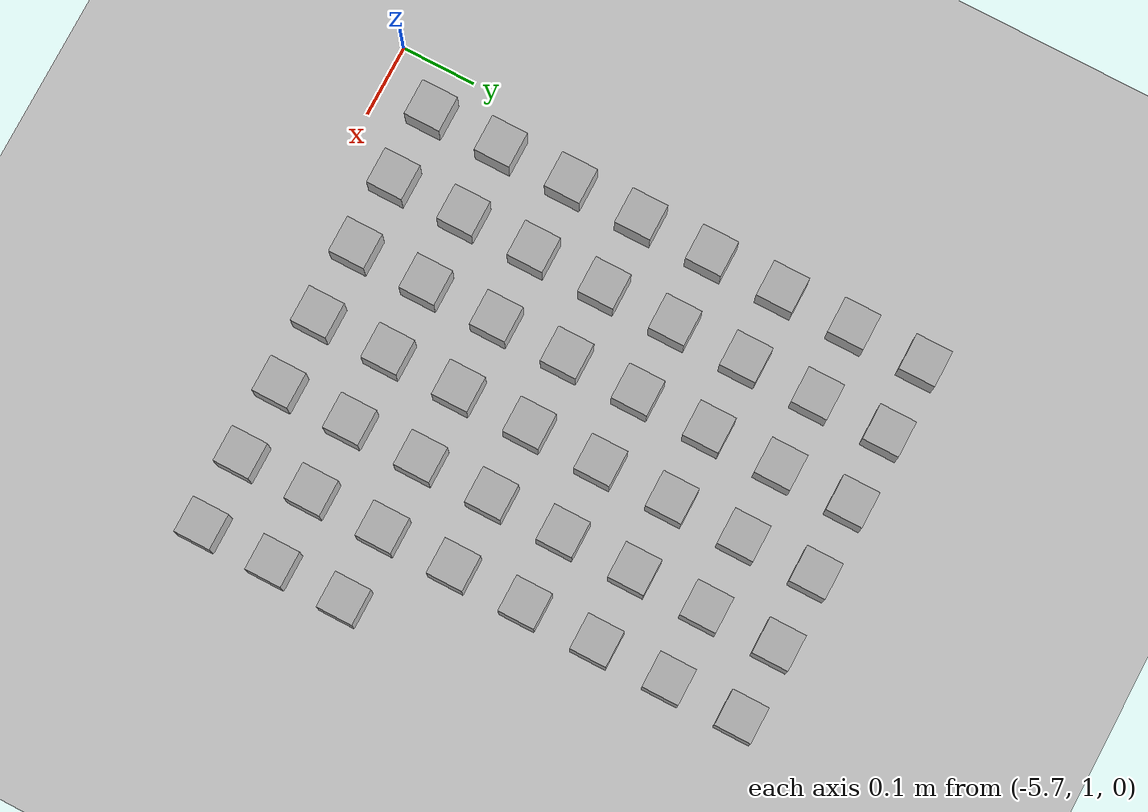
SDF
<sdf version="1.4">
 <world name="default">
  <model name="ground_plane">
   <static>1</static>
   <link name="link">
    <collision name="collision">
     <geometry><plane><normal>0 0 1</normal><size>100 100</size></plane></geometry>
     <surface><friction><ode><mu>100</mu><mu2>50</mu2></ode></friction></surface>
    </collision>
    <visual name="visual">
     <cast_shadows>0</cast_shadows>
     <geometry><plane><normal>0 0 1</normal><size>100 100</size></plane></geometry>
     <material>
      <script><uri>file://media/materials/scripts/gazebo.material</uri><name>Gazebo/Grey</name></script>
     </material>
    </visual>
    <velocity_decay><linear>0</linear><angular>0</angular></velocity_decay>
   </link>
  </model>
  <model name="at128">
   <static>0</static>
   <link name="link">
    <inertial>
     <mass>0.01</mass>
     <inertia><ixx>4e-05</ixx><ixy>0</ixy><ixz>0</ixz><iyy>4e-05</iyy><iyz>0</iyz><izz>4e-05</izz></inertia>
    </inertial>
    <visual name="visual">
     <geometry><box><size>0.05 0.05 0.05</size></box></geometry>
     <material>
      <script>
       <uri>model://at0/materials/scripts</uri>
       <uri>model://at0/materials/textures</uri>
       <name>at0/Diffuse</name>
      </script>
     </material>
    </visual>
    <collision name="collision">
     <geometry><box><size>0.05 0.05 0.05</size></box></geometry>
     <surface><friction><ode><mu>0.8</mu><mu2>0.7</mu2></ode></friction></surface>
    </collision>
    <velocity_decay><linear>0</linear><angular>0</angular></velocity_decay>
   </link>
   <pose>-5.63888 1.07373 0.025 0 -0 0</pose>
  </model>
  <model name="at129">
   <static>0</static>
   <link name="link">
    <inertial>
     <mass>0.01</mass>
     <inertia><ixx>4e-05</ixx><ixy>0</ixy><ixz>0</ixz><iyy>4e-05</iyy><iyz>0</iyz><izz>4e-05</izz></inertia>
    </inertial>
    <visual name="visual">
     <geometry><box><size>0.05 0.05 0.05</size></box></geometry>
     <material>
      <script>
       <uri>model://at0/materials/scripts</uri>
       <uri>model://at0/materials/textures</uri>
       <name>at0/Diffuse</name>
      </script>
     </material>
    </visual>
    <collision name="collision">
     <geometry><box><size>0.05 0.05 0.05</size></box></geometry>
     <surface><friction><ode><mu>0.8</mu><mu2>0.7</mu2></ode></friction></surface>
    </collision>
    <velocity_decay><linear>0</linear><angular>0</angular></velocity_decay>
   </link>
   <pose>-5.53888 1.07373 0.025 0 -0 0</pose>
  </model>
  <model name="at130">
   <static>0</static>
   <link name="link">
    <inertial>
     <mass>0.01</mass>
     <inertia><ixx>4e-05</ixx><ixy>0</ixy><ixz>0</ixz><iyy>4e-05</iyy><iyz>0</iyz><izz>4e-05</izz></inertia>
    </inertial>
    <visual name="visual">
     <geometry><box><size>0.05 0.05 0.05</size></box></geometry>
     <material>
      <script>
       <uri>model://at0/materials/scripts</uri>
       <uri>model://at0/materials/textures</uri>
       <name>at0/Diffuse</name>
      </script>
     </material>
    </visual>
    <collision name="collision">
     <geometry><box><size>0.05 0.05 0.05</size></box></geometry>
     <surface><friction><ode><mu>0.8</mu><mu2>0.7</mu2></ode></friction></surface>
    </collision>
    <velocity_decay><linear>0</linear><angular>0</angular></velocity_decay>
   </link>
   <pose>-5.43888 1.07373 0.025 0 -0 0</pose>
  </model>
  <model name="at131">
   <static>0</static>
   <link name="link">
    <inertial>
     <mass>0.01</mass>
     <inertia><ixx>4e-05</ixx><ixy>0</ixy><ixz>0</ixz><iyy>4e-05</iyy><iyz>0</iyz><izz>4e-05</izz></inertia>
    </inertial>
    <visual name="visual">
     <geometry><box><size>0.05 0.05 0.05</size></box></geometry>
     <material>
      <script>
       <uri>model://at0/materials/scripts</uri>
       <uri>model://at0/materials/textures</uri>
       <name>at0/Diffuse</name>
      </script>
     </material>
    </visual>
    <collision name="collision">
     <geometry><box><size>0.05 0.05 0.05</size></box></geometry>
     <surface><friction><ode><mu>0.8</mu><mu2>0.7</mu2></ode></friction></surface>
    </collision>
    <velocity_decay><linear>0</linear><angular>0</angular></velocity_decay>
   </link>
   <pose>-5.33888 1.07373 0.025 0 -0 0</pose>
  </model>
  <model name="at132">
   <static>0</static>
   <link name="link">
    <inertial>
     <mass>0.01</mass>
     <inertia><ixx>4e-05</ixx><ixy>0</ixy><ixz>0</ixz><iyy>4e-05</iyy><iyz>0</iyz><izz>4e-05</izz></inertia>
    </inertial>
    <visual name="visual">
     <geometry><box><size>0.05 0.05 0.05</size></box></geometry>
     <material>
      <script>
       <uri>model://at0/materials/scripts</uri>
       <uri>model://at0/materials/textures</uri>
       <name>at0/Diffuse</name>
      </script>
     </material>
    </visual>
    <collision name="collision">
     <geometry><box><size>0.05 0.05 0.05</size></box></geometry>
     <surface><friction><ode><mu>0.8</mu><mu2>0.7</mu2></ode></friction></surface>
    </collision>
    <velocity_decay><linear>0</linear><angular>0</angular></velocity_decay>
   </link>
   <pose>-5.23888 1.07373 0.025 0 -0 0</pose>
  </model>
  <model name="at133">
   <static>0</static>
   <link name="link">
    <inertial>
     <mass>0.01</mass>
     <inertia><ixx>4e-05</ixx><ixy>0</ixy><ixz>0</ixz><iyy>4e-05</iyy><iyz>0</iyz><izz>4e-05</izz></inertia>
    </inertial>
    <visual name="visual">
     <geometry><box><size>0.05 0.05 0.05</size></box></geometry>
     <material>
      <script>
       <uri>model://at0/materials/scripts</uri>
       <uri>model://at0/materials/textures</uri>
       <name>at0/Diffuse</name>
      </script>
     </material>
    </visual>
    <collision name="collision">
     <geometry><box><size>0.05 0.05 0.05</size></box></geometry>
     <surface><friction><ode><mu>0.8</mu><mu2>0.7</mu2></ode></friction></surface>
    </collision>
    <velocity_decay><linear>0</linear><angular>0</angular></velocity_decay>
   </link>
   <pose>-5.13889 1.07373 0.025 0 -0 0</pose>
  </model>
  <model name="at134">
   <static>0</static>
   <link name="link">
    <inertial>
     <mass>0.01</mass>
     <inertia><ixx>4e-05</ixx><ixy>0</ixy><ixz>0</ixz><iyy>4e-05</iyy><iyz>0</iyz><izz>4e-05</izz></inertia>
    </inertial>
    <visual name="visual">
     <geometry><box><size>0.05 0.05 0.05</size></box></geometry>
     <material>
      <script>
       <uri>model://at0/materials/scripts</uri>
       <uri>model://at0/materials/textures</uri>
       <name>at0/Diffuse</name>
      </script>
     </material>
    </visual>
    <collision name="collision">
     <geometry><box><size>0.05 0.05 0.05</size></box></geometry>
     <surface><friction><ode><mu>0.8</mu><mu2>0.7</mu2></ode></friction></surface>
    </collision>
    <velocity_decay><linear>0</linear><angular>0</angular></velocity_decay>
   </link>
   <pose>-5.03889 1.07373 0.025 0 -0 0</pose>
  </model>
  <model name="at136">
   <static>0</static>
   <link name="link">
    <inertial>
     <mass>0.01</mass>
     <inertia><ixx>4e-05</ixx><ixy>0</ixy><ixz>0</ixz><iyy>4e-05</iyy><iyz>0</iyz><izz>4e-05</izz></inertia>
    </inertial>
    <visual name="visual">
     <geometry><box><size>0.05 0.05 0.05</size></box></geometry>
     <material>
      <script>
       <uri>model://at0/materials/scripts</uri>
       <uri>model://at0/materials/textures</uri>
       <name>at0/Diffuse</name>
      </script>
     </material>
    </visual>
    <collision name="collision">
     <geometry><box><size>0.05 0.05 0.05</size></box></geometry>
     <surface><friction><ode><mu>0.8</mu><mu2>0.7</mu2></ode></friction></surface>
    </collision>
    <velocity_decay><linear>0</linear><angular>0</angular></velocity_decay>
   </link>
   <pose>-5.63888 1.17373 0.025 0 -0 0</pose>
  </model>
  <model name="at137">
   <static>0</static>
   <link name="link">
    <inertial>
     <mass>0.01</mass>
     <inertia><ixx>4e-05</ixx><ixy>0</ixy><ixz>0</ixz><iyy>4e-05</iyy><iyz>0</iyz><izz>4e-05</izz></inertia>
    </inertial>
    <visual name="visual">
     <geometry><box><size>0.05 0.05 0.05</size></box></geometry>
     <material>
      <script>
       <uri>model://at0/materials/scripts</uri>
       <uri>model://at0/materials/textures</uri>
       <name>at0/Diffuse</name>
      </script>
     </material>
    </visual>
    <collision name="collision">
     <geometry><box><size>0.05 0.05 0.05</size></box></geometry>
     <surface><friction><ode><mu>0.8</mu><mu2>0.7</mu2></ode></friction></surface>
    </collision>
    <velocity_decay><linear>0</linear><angular>0</angular></velocity_decay>
   </link>
   <pose>-5.53888 1.17373 0.025 0 -0 0</pose>
  </model>
  <model name="at138">
   <static>0</static>
   <link name="link">
    <inertial>
     <mass>0.01</mass>
     <inertia><ixx>4e-05</ixx><ixy>0</ixy><ixz>0</ixz><iyy>4e-05</iyy><iyz>0</iyz><izz>4e-05</izz></inertia>
    </inertial>
    <visual name="visual">
     <geometry><box><size>0.05 0.05 0.05</size></box></geometry>
     <material>
      <script>
       <uri>model://at0/materials/scripts</uri>
       <uri>model://at0/materials/textures</uri>
       <name>at0/Diffuse</name>
      </script>
     </material>
    </visual>
    <collision name="collision">
     <geometry><box><size>0.05 0.05 0.05</size></box></geometry>
     <surface><friction><ode><mu>0.8</mu><mu2>0.7</mu2></ode></friction></surface>
    </collision>
    <velocity_decay><linear>0</linear><angular>0</angular></velocity_decay>
   </link>
   <pose>-5.43888 1.17373 0.025 0 -0 0</pose>
  </model>
  <model name="at139">
   <static>0</static>
   <link name="link">
    <inertial>
     <mass>0.01</mass>
     <inertia><ixx>4e-05</ixx><ixy>0</ixy><ixz>0</ixz><iyy>4e-05</iyy><iyz>0</iyz><izz>4e-05</izz></inertia>
    </inertial>
    <visual name="visual">
     <geometry><box><size>0.05 0.05 0.05</size></box></geometry>
     <material>
      <script>
       <uri>model://at0/materials/scripts</uri>
       <uri>model://at0/materials/textures</uri>
       <name>at0/Diffuse</name>
      </script>
     </material>
    </visual>
    <collision name="collision">
     <geometry><box><size>0.05 0.05 0.05</size></box></geometry>
     <surface><friction><ode><mu>0.8</mu><mu2>0.7</mu2></ode></friction></surface>
    </collision>
    <velocity_decay><linear>0</linear><angular>0</angular></velocity_decay>
   </link>
   <pose>-5.33888 1.17373 0.025 0 -0 0</pose>
  </model>
  <model name="at140">
   <static>0</static>
   <link name="link">
    <inertial>
     <mass>0.01</mass>
     <inertia><ixx>4e-05</ixx><ixy>0</ixy><ixz>0</ixz><iyy>4e-05</iyy><iyz>0</iyz><izz>4e-05</izz></inertia>
    </inertial>
    <visual name="visual">
     <geometry><box><size>0.05 0.05 0.05</size></box></geometry>
     <material>
      <script>
       <uri>model://at0/materials/scripts</uri>
       <uri>model://at0/materials/textures</uri>
       <name>at0/Diffuse</name>
      </script>
     </material>
    </visual>
    <collision name="collision">
     <geometry><box><size>0.05 0.05 0.05</size></box></geometry>
     <surface><friction><ode><mu>0.8</mu><mu2>0.7</mu2></ode></friction></surface>
    </collision>
    <velocity_decay><linear>0</linear><angular>0</angular></velocity_decay>
   </link>
   <pose>-5.23888 1.17373 0.025 0 -0 0</pose>
  </model>
  <model name="at141">
   <static>0</static>
   <link name="link">
    <inertial>
     <mass>0.01</mass>
     <inertia><ixx>4e-05</ixx><ixy>0</ixy><ixz>0</ixz><iyy>4e-05</iyy><iyz>0</iyz><izz>4e-05</izz></inertia>
    </inertial>
    <visual name="visual">
     <geometry><box><size>0.05 0.05 0.05</size></box></geometry>
     <material>
      <script>
       <uri>model://at0/materials/scripts</uri>
       <uri>model://at0/materials/textures</uri>
       <name>at0/Diffuse</name>
      </script>
     </material>
    </visual>
    <collision name="collision">
     <geometry><box><size>0.05 0.05 0.05</size></box></geometry>
     <surface><friction><ode><mu>0.8</mu><mu2>0.7</mu2></ode></friction></surface>
    </collision>
    <velocity_decay><linear>0</linear><angular>0</angular></velocity_decay>
   </link>
   <pose>-5.13889 1.17373 0.025 0 -0 0</pose>
  </model>
  <model name="at142">
   <static>0</static>
   <link name="link">
    <inertial>
     <mass>0.01</mass>
     <inertia><ixx>4e-05</ixx><ixy>0</ixy><ixz>0</ixz><iyy>4e-05</iyy><iyz>0</iyz><izz>4e-05</izz></inertia>
    </inertial>
    <visual name="visual">
     <geometry><box><size>0.05 0.05 0.05</size></box></geometry>
     <material>
      <script>
       <uri>model://at0/materials/scripts</uri>
       <uri>model://at0/materials/textures</uri>
       <name>at0/Diffuse</name>
      </script>
     </material>
    </visual>
    <collision name="collision">
     <geometry><box><size>0.05 0.05 0.05</size></box></geometry>
     <surface><friction><ode><mu>0.8</mu><mu2>0.7</mu2></ode></friction></surface>
    </collision>
    <velocity_decay><linear>0</linear><angular>0</angular></velocity_decay>
   </link>
   <pose>-5.03889 1.17373 0.025 0 -0 0</pose>
  </model>
  <model name="at144">
   <static>0</static>
   <link name="link">
    <inertial>
     <mass>0.01</mass>
     <inertia><ixx>4e-05</ixx><ixy>0</ixy><ixz>0</ixz><iyy>4e-05</iyy><iyz>0</iyz><izz>4e-05</izz></inertia>
    </inertial>
    <visual name="visual">
     <geometry><box><size>0.05 0.05 0.05</size></box></geometry>
     <material>
      <script>
       <uri>model://at0/materials/scripts</uri>
       <uri>model://at0/materials/textures</uri>
       <name>at0/Diffuse</name>
      </script>
     </material>
    </visual>
    <collision name="collision">
     <geometry><box><size>0.05 0.05 0.05</size></box></geometry>
     <surface><friction><ode><mu>0.8</mu><mu2>0.7</mu2></ode></friction></surface>
    </collision>
    <velocity_decay><linear>0</linear><angular>0</angular></velocity_decay>
   </link>
   <pose>-5.63888 1.27373 0.025 0 -0 0</pose>
  </model>
  <model name="at145">
   <static>0</static>
   <link name="link">
    <inertial>
     <mass>0.01</mass>
     <inertia><ixx>4e-05</ixx><ixy>0</ixy><ixz>0</ixz><iyy>4e-05</iyy><iyz>0</iyz><izz>4e-05</izz></inertia>
    </inertial>
    <visual name="visual">
     <geometry><box><size>0.05 0.05 0.05</size></box></geometry>
     <material>
      <script>
       <uri>model://at0/materials/scripts</uri>
       <uri>model://at0/materials/textures</uri>
       <name>at0/Diffuse</name>
      </script>
     </material>
    </visual>
    <collision name="collision">
     <geometry><box><size>0.05 0.05 0.05</size></box></geometry>
     <surface><friction><ode><mu>0.8</mu><mu2>0.7</mu2></ode></friction></surface>
    </collision>
    <velocity_decay><linear>0</linear><angular>0</angular></velocity_decay>
   </link>
   <pose>-5.53888 1.27373 0.025 0 -0 0</pose>
  </model>
  <model name="at146">
   <static>0</static>
   <link name="link">
    <inertial>
     <mass>0.01</mass>
     <inertia><ixx>4e-05</ixx><ixy>0</ixy><ixz>0</ixz><iyy>4e-05</iyy><iyz>0</iyz><izz>4e-05</izz></inertia>
    </inertial>
    <visual name="visual">
     <geometry><box><size>0.05 0.05 0.05</size></box></geometry>
     <material>
      <script>
       <uri>model://at0/materials/scripts</uri>
       <uri>model://at0/materials/textures</uri>
       <name>at0/Diffuse</name>
      </script>
     </material>
    </visual>
    <collision name="collision">
     <geometry><box><size>0.05 0.05 0.05</size></box></geometry>
     <surface><friction><ode><mu>0.8</mu><mu2>0.7</mu2></ode></friction></surface>
    </collision>
    <velocity_decay><linear>0</linear><angular>0</angular></velocity_decay>
   </link>
   <pose>-5.43888 1.27373 0.025 0 -0 0</pose>
  </model>
  <model name="at147">
   <static>0</static>
   <link name="link">
    <inertial>
     <mass>0.01</mass>
     <inertia><ixx>4e-05</ixx><ixy>0</ixy><ixz>0</ixz><iyy>4e-05</iyy><iyz>0</iyz><izz>4e-05</izz></inertia>
    </inertial>
    <visual name="visual">
     <geometry><box><size>0.05 0.05 0.05</size></box></geometry>
     <material>
      <script>
       <uri>model://at0/materials/scripts</uri>
       <uri>model://at0/materials/textures</uri>
       <name>at0/Diffuse</name>
      </script>
     </material>
    </visual>
    <collision name="collision">
     <geometry><box><size>0.05 0.05 0.05</size></box></geometry>
     <surface><friction><ode><mu>0.8</mu><mu2>0.7</mu2></ode></friction></surface>
    </collision>
    <velocity_decay><linear>0</linear><angular>0</angular></velocity_decay>
   </link>
   <pose>-5.33888 1.27373 0.025 0 -0 0</pose>
  </model>
  <model name="at148">
   <static>0</static>
   <link name="link">
    <inertial>
     <mass>0.01</mass>
     <inertia><ixx>4e-05</ixx><ixy>0</ixy><ixz>0</ixz><iyy>4e-05</iyy><iyz>0</iyz><izz>4e-05</izz></inertia>
    </inertial>
    <visual name="visual">
     <geometry><box><size>0.05 0.05 0.05</size></box></geometry>
     <material>
      <script>
       <uri>model://at0/materials/scripts</uri>
       <uri>model://at0/materials/textures</uri>
       <name>at0/Diffuse</name>
      </script>
     </material>
    </visual>
    <collision name="collision">
     <geometry><box><size>0.05 0.05 0.05</size></box></geometry>
     <surface><friction><ode><mu>0.8</mu><mu2>0.7</mu2></ode></friction></surface>
    </collision>
    <velocity_decay><linear>0</linear><angular>0</angular></velocity_decay>
   </link>
   <pose>-5.23888 1.27373 0.025 0 -0 0</pose>
  </model>
  <model name="at149">
   <static>0</static>
   <link name="link">
    <inertial>
     <mass>0.01</mass>
     <inertia><ixx>4e-05</ixx><ixy>0</ixy><ixz>0</ixz><iyy>4e-05</iyy><iyz>0</iyz><izz>4e-05</izz></inertia>
    </inertial>
    <visual name="visual">
     <geometry><box><size>0.05 0.05 0.05</size></box></geometry>
     <material>
      <script>
       <uri>model://at0/materials/scripts</uri>
       <uri>model://at0/materials/textures</uri>
       <name>at0/Diffuse</name>
      </script>
     </material>
    </visual>
    <collision name="collision">
     <geometry><box><size>0.05 0.05 0.05</size></box></geometry>
     <surface><friction><ode><mu>0.8</mu><mu2>0.7</mu2></ode></friction></surface>
    </collision>
    <velocity_decay><linear>0</linear><angular>0</angular></velocity_decay>
   </link>
   <pose>-5.13889 1.27373 0.025 0 -0 0</pose>
  </model>
  <model name="at150">
   <static>0</static>
   <link name="link">
    <inertial>
     <mass>0.01</mass>
     <inertia><ixx>4e-05</ixx><ixy>0</ixy><ixz>0</ixz><iyy>4e-05</iyy><iyz>0</iyz><izz>4e-05</izz></inertia>
    </inertial>
    <visual name="visual">
     <geometry><box><size>0.05 0.05 0.05</size></box></geometry>
     <material>
      <script>
       <uri>model://at0/materials/scripts</uri>
       <uri>model://at0/materials/textures</uri>
       <name>at0/Diffuse</name>
      </script>
     </material>
    </visual>
    <collision name="collision">
     <geometry><box><size>0.05 0.05 0.05</size></box></geometry>
     <surface><friction><ode><mu>0.8</mu><mu2>0.7</mu2></ode></friction></surface>
    </collision>
    <velocity_decay><linear>0</linear><angular>0</angular></velocity_decay>
   </link>
   <pose>-5.03889 1.27373 0.025 0 -0 0</pose>
  </model>
  <model name="at152">
   <static>0</static>
   <link name="link">
    <inertial>
     <mass>0.01</mass>
     <inertia><ixx>4e-05</ixx><ixy>0</ixy><ixz>0</ixz><iyy>4e-05</iyy><iyz>0</iyz><izz>4e-05</izz></inertia>
    </inertial>
    <visual name="visual">
     <geometry><box><size>0.05 0.05 0.05</size></box></geometry>
     <material>
      <script>
       <uri>model://at0/materials/scripts</uri>
       <uri>model://at0/materials/textures</uri>
       <name>at0/Diffuse</name>
      </script>
     </material>
    </visual>
    <collision name="collision">
     <geometry><box><size>0.05 0.05 0.05</size></box></geometry>
     <surface><friction><ode><mu>0.8</mu><mu2>0.7</mu2></ode></friction></surface>
    </collision>
    <velocity_decay><linear>0</linear><angular>0</angular></velocity_decay>
   </link>
   <pose>-5.63888 1.37373 0.025 0 -0 0</pose>
  </model>
  <model name="at153">
   <static>0</static>
   <link name="link">
    <inertial>
     <mass>0.01</mass>
     <inertia><ixx>4e-05</ixx><ixy>0</ixy><ixz>0</ixz><iyy>4e-05</iyy><iyz>0</iyz><izz>4e-05</izz></inertia>
    </inertial>
    <visual name="visual">
     <geometry><box><size>0.05 0.05 0.05</size></box></geometry>
     <material>
      <script>
       <uri>model://at0/materials/scripts</uri>
       <uri>model://at0/materials/textures</uri>
       <name>at0/Diffuse</name>
      </script>
     </material>
    </visual>
    <collision name="collision">
     <geometry><box><size>0.05 0.05 0.05</size></box></geometry>
     <surface><friction><ode><mu>0.8</mu><mu2>0.7</mu2></ode></friction></surface>
    </collision>
    <velocity_decay><linear>0</linear><angular>0</angular></velocity_decay>
   </link>
   <pose>-5.53888 1.37373 0.025 0 -0 0</pose>
  </model>
  <model name="at154">
   <static>0</static>
   <link name="link">
    <inertial>
     <mass>0.01</mass>
     <inertia><ixx>4e-05</ixx><ixy>0</ixy><ixz>0</ixz><iyy>4e-05</iyy><iyz>0</iyz><izz>4e-05</izz></inertia>
    </inertial>
    <visual name="visual">
     <geometry><box><size>0.05 0.05 0.05</size></box></geometry>
     <material>
      <script>
       <uri>model://at0/materials/scripts</uri>
       <uri>model://at0/materials/textures</uri>
       <name>at0/Diffuse</name>
      </script>
     </material>
    </visual>
    <collision name="collision">
     <geometry><box><size>0.05 0.05 0.05</size></box></geometry>
     <surface><friction><ode><mu>0.8</mu><mu2>0.7</mu2></ode></friction></surface>
    </collision>
    <velocity_decay><linear>0</linear><angular>0</angular></velocity_decay>
   </link>
   <pose>-5.43888 1.37373 0.025 0 -0 0</pose>
  </model>
  <model name="at155">
   <static>0</static>
   <link name="link">
    <inertial>
     <mass>0.01</mass>
     <inertia><ixx>4e-05</ixx><ixy>0</ixy><ixz>0</ixz><iyy>4e-05</iyy><iyz>0</iyz><izz>4e-05</izz></inertia>
    </inertial>
    <visual name="visual">
     <geometry><box><size>0.05 0.05 0.05</size></box></geometry>
     <material>
      <script>
       <uri>model://at0/materials/scripts</uri>
       <uri>model://at0/materials/textures</uri>
       <name>at0/Diffuse</name>
      </script>
     </material>
    </visual>
    <collision name="collision">
     <geometry><box><size>0.05 0.05 0.05</size></box></geometry>
     <surface><friction><ode><mu>0.8</mu><mu2>0.7</mu2></ode></friction></surface>
    </collision>
    <velocity_decay><linear>0</linear><angular>0</angular></velocity_decay>
   </link>
   <pose>-5.33888 1.37373 0.025 0 -0 0</pose>
  </model>
  <model name="at156">
   <static>0</static>
   <link name="link">
    <inertial>
     <mass>0.01</mass>
     <inertia><ixx>4e-05</ixx><ixy>0</ixy><ixz>0</ixz><iyy>4e-05</iyy><iyz>0</iyz><izz>4e-05</izz></inertia>
    </inertial>
    <visual name="visual">
     <geometry><box><size>0.05 0.05 0.05</size></box></geometry>
     <material>
      <script>
       <uri>model://at0/materials/scripts</uri>
       <uri>model://at0/materials/textures</uri>
       <name>at0/Diffuse</name>
      </script>
     </material>
    </visual>
    <collision name="collision">
     <geometry><box><size>0.05 0.05 0.05</size></box></geometry>
     <surface><friction><ode><mu>0.8</mu><mu2>0.7</mu2></ode></friction></surface>
    </collision>
    <velocity_decay><linear>0</linear><angular>0</angular></velocity_decay>
   </link>
   <pose>-5.23888 1.37373 0.025 0 -0 0</pose>
  </model>
  <model name="at157">
   <static>0</static>
   <link name="link">
    <inertial>
     <mass>0.01</mass>
     <inertia><ixx>4e-05</ixx><ixy>0</ixy><ixz>0</ixz><iyy>4e-05</iyy><iyz>0</iyz><izz>4e-05</izz></inertia>
    </inertial>
    <visual name="visual">
     <geometry><box><size>0.05 0.05 0.05</size></box></geometry>
     <material>
      <script>
       <uri>model://at0/materials/scripts</uri>
       <uri>model://at0/materials/textures</uri>
       <name>at0/Diffuse</name>
      </script>
     </material>
    </visual>
    <collision name="collision">
     <geometry><box><size>0.05 0.05 0.05</size></box></geometry>
     <surface><friction><ode><mu>0.8</mu><mu2>0.7</mu2></ode></friction></surface>
    </collision>
    <velocity_decay><linear>0</linear><angular>0</angular></velocity_decay>
   </link>
   <pose>-5.13889 1.37373 0.025 0 -0 0</pose>
  </model>
  <model name="at160">
   <static>0</static>
   <link name="link">
    <inertial>
     <mass>0.01</mass>
     <inertia><ixx>4e-05</ixx><ixy>0</ixy><ixz>0</ixz><iyy>4e-05</iyy><iyz>0</iyz><izz>4e-05</izz></inertia>
    </inertial>
    <visual name="visual">
     <geometry><box><size>0.05 0.05 0.05</size></box></geometry>
     <material>
      <script>
       <uri>model://at0/materials/scripts</uri>
       <uri>model://at0/materials/textures</uri>
       <name>at0/Diffuse</name>
      </script>
     </material>
    </visual>
    <collision name="collision">
     <geometry><box><size>0.05 0.05 0.05</size></box></geometry>
     <surface><friction><ode><mu>0.8</mu><mu2>0.7</mu2></ode></friction></surface>
    </collision>
    <velocity_decay><linear>0</linear><angular>0</angular></velocity_decay>
   </link>
   <pose>-5.63888 1.47373 0.025 0 -0 0</pose>
  </model>
  <model name="at161">
   <static>0</static>
   <link name="link">
    <inertial>
     <mass>0.01</mass>
     <inertia><ixx>4e-05</ixx><ixy>0</ixy><ixz>0</ixz><iyy>4e-05</iyy><iyz>0</iyz><izz>4e-05</izz></inertia>
    </inertial>
    <visual name="visual">
     <geometry><box><size>0.05 0.05 0.05</size></box></geometry>
     <material>
      <script>
       <uri>model://at0/materials/scripts</uri>
       <uri>model://at0/materials/textures</uri>
       <name>at0/Diffuse</name>
      </script>
     </material>
    </visual>
    <collision name="collision">
     <geometry><box><size>0.05 0.05 0.05</size></box></geometry>
     <surface><friction><ode><mu>0.8</mu><mu2>0.7</mu2></ode></friction></surface>
    </collision>
    <velocity_decay><linear>0</linear><angular>0</angular></velocity_decay>
   </link>
   <pose>-5.53888 1.47373 0.025 0 -0 0</pose>
  </model>
  <model name="at162">
   <static>0</static>
   <link name="link">
    <inertial>
     <mass>0.01</mass>
     <inertia><ixx>4e-05</ixx><ixy>0</ixy><ixz>0</ixz><iyy>4e-05</iyy><iyz>0</iyz><izz>4e-05</izz></inertia>
    </inertial>
    <visual name="visual">
     <geometry><box><size>0.05 0.05 0.05</size></box></geometry>
     <material>
      <script>
       <uri>model://at0/materials/scripts</uri>
       <uri>model://at0/materials/textures</uri>
       <name>at0/Diffuse</name>
      </script>
     </material>
    </visual>
    <collision name="collision">
     <geometry><box><size>0.05 0.05 0.05</size></box></geometry>
     <surface><friction><ode><mu>0.8</mu><mu2>0.7</mu2></ode></friction></surface>
    </collision>
    <velocity_decay><linear>0</linear><angular>0</angular></velocity_decay>
   </link>
   <pose>-5.43888 1.47373 0.025 0 -0 0</pose>
  </model>
  <model name="at163">
   <static>0</static>
   <link name="link">
    <inertial>
     <mass>0.01</mass>
     <inertia><ixx>4e-05</ixx><ixy>0</ixy><ixz>0</ixz><iyy>4e-05</iyy><iyz>0</iyz><izz>4e-05</izz></inertia>
    </inertial>
    <visual name="visual">
     <geometry><box><size>0.05 0.05 0.05</size></box></geometry>
     <material>
      <script>
       <uri>model://at0/materials/scripts</uri>
       <uri>model://at0/materials/textures</uri>
       <name>at0/Diffuse</name>
      </script>
     </material>
    </visual>
    <collision name="collision">
     <geometry><box><size>0.05 0.05 0.05</size></box></geometry>
     <surface><friction><ode><mu>0.8</mu><mu2>0.7</mu2></ode></friction></surface>
    </collision>
    <velocity_decay><linear>0</linear><angular>0</angular></velocity_decay>
   </link>
   <pose>-5.33888 1.47373 0.025 0 -0 0</pose>
  </model>
  <model name="at164">
   <static>0</static>
   <link name="link">
    <inertial>
     <mass>0.01</mass>
     <inertia><ixx>4e-05</ixx><ixy>0</ixy><ixz>0</ixz><iyy>4e-05</iyy><iyz>0</iyz><izz>4e-05</izz></inertia>
    </inertial>
    <visual name="visual">
     <geometry><box><size>0.05 0.05 0.05</size></box></geometry>
     <material>
      <script>
       <uri>model://at0/materials/scripts</uri>
       <uri>model://at0/materials/textures</uri>
       <name>at0/Diffuse</name>
      </script>
     </material>
    </visual>
    <collision name="collision">
     <geometry><box><size>0.05 0.05 0.05</size></box></geometry>
     <surface><friction><ode><mu>0.8</mu><mu2>0.7</mu2></ode></friction></surface>
    </collision>
    <velocity_decay><linear>0</linear><angular>0</angular></velocity_decay>
   </link>
   <pose>-5.23888 1.47373 0.025 0 -0 0</pose>
  </model>
  <model name="at165">
   <static>0</static>
   <link name="link">
    <inertial>
     <mass>0.01</mass>
     <inertia><ixx>4e-05</ixx><ixy>0</ixy><ixz>0</ixz><iyy>4e-05</iyy><iyz>0</iyz><izz>4e-05</izz></inertia>
    </inertial>
    <visual name="visual">
     <geometry><box><size>0.05 0.05 0.05</size></box></geometry>
     <material>
      <script>
       <uri>model://at0/materials/scripts</uri>
       <uri>model://at0/materials/textures</uri>
       <name>at0/Diffuse</name>
      </script>
     </material>
    </visual>
    <collision name="collision">
     <geometry><box><size>0.05 0.05 0.05</size></box></geometry>
     <surface><friction><ode><mu>0.8</mu><mu2>0.7</mu2></ode></friction></surface>
    </collision>
    <velocity_decay><linear>0</linear><angular>0</angular></velocity_decay>
   </link>
   <pose>-5.13889 1.47373 0.025 0 -0 0</pose>
  </model>
  <model name="at168">
   <static>0</static>
   <link name="link">
    <inertial>
     <mass>0.01</mass>
     <inertia><ixx>4e-05</ixx><ixy>0</ixy><ixz>0</ixz><iyy>4e-05</iyy><iyz>0</iyz><izz>4e-05</izz></inertia>
    </inertial>
    <visual name="visual">
     <geometry><box><size>0.05 0.05 0.05</size></box></geometry>
     <material>
      <script>
       <uri>model://at0/materials/scripts</uri>
       <uri>model://at0/materials/textures</uri>
       <name>at0/Diffuse</name>
      </script>
     </material>
    </visual>
    <collision name="collision">
     <geometry><box><size>0.05 0.05 0.05</size></box></geometry>
     <surface><friction><ode><mu>0.8</mu><mu2>0.7</mu2></ode></friction></surface>
    </collision>
    <velocity_decay><linear>0</linear><angular>0</angular></velocity_decay>
   </link>
   <pose>-5.63888 1.57373 0.025 0 -0 0</pose>
  </model>
  <model name="at169">
   <static>0</static>
   <link name="link">
    <inertial>
     <mass>0.01</mass>
     <inertia><ixx>4e-05</ixx><ixy>0</ixy><ixz>0</ixz><iyy>4e-05</iyy><iyz>0</iyz><izz>4e-05</izz></inertia>
    </inertial>
    <visual name="visual">
     <geometry><box><size>0.05 0.05 0.05</size></box></geometry>
     <material>
      <script>
       <uri>model://at0/materials/scripts</uri>
       <uri>model://at0/materials/textures</uri>
       <name>at0/Diffuse</name>
      </script>
     </material>
    </visual>
    <collision name="collision">
     <geometry><box><size>0.05 0.05 0.05</size></box></geometry>
     <surface><friction><ode><mu>0.8</mu><mu2>0.7</mu2></ode></friction></surface>
    </collision>
    <velocity_decay><linear>0</linear><angular>0</angular></velocity_decay>
   </link>
   <pose>-5.53888 1.57373 0.025 0 -0 0</pose>
  </model>
  <model name="at170">
   <static>0</static>
   <link name="link">
    <inertial>
     <mass>0.01</mass>
     <inertia><ixx>4e-05</ixx><ixy>0</ixy><ixz>0</ixz><iyy>4e-05</iyy><iyz>0</iyz><izz>4e-05</izz></inertia>
    </inertial>
    <visual name="visual">
     <geometry><box><size>0.05 0.05 0.05</size></box></geometry>
     <material>
      <script>
       <uri>model://at0/materials/scripts</uri>
       <uri>model://at0/materials/textures</uri>
       <name>at0/Diffuse</name>
      </script>
     </material>
    </visual>
    <collision name="collision">
     <geometry><box><size>0.05 0.05 0.05</size></box></geometry>
     <surface><friction><ode><mu>0.8</mu><mu2>0.7</mu2></ode></friction></surface>
    </collision>
    <velocity_decay><linear>0</linear><angular>0</angular></velocity_decay>
   </link>
   <pose>-5.43888 1.57373 0.025 0 -0 0</pose>
  </model>
  <model name="at171">
   <static>0</static>
   <link name="link">
    <inertial>
     <mass>0.01</mass>
     <inertia><ixx>4e-05</ixx><ixy>0</ixy><ixz>0</ixz><iyy>4e-05</iyy><iyz>0</iyz><izz>4e-05</izz></inertia>
    </inertial>
    <visual name="visual">
     <geometry><box><size>0.05 0.05 0.05</size></box></geometry>
     <material>
      <script>
       <uri>model://at0/materials/scripts</uri>
       <uri>model://at0/materials/textures</uri>
       <name>at0/Diffuse</name>
      </script>
     </material>
    </visual>
    <collision name="collision">
     <geometry><box><size>0.05 0.05 0.05</size></box></geometry>
     <surface><friction><ode><mu>0.8</mu><mu2>0.7</mu2></ode></friction></surface>
    </collision>
    <velocity_decay><linear>0</linear><angular>0</angular></velocity_decay>
   </link>
   <pose>-5.33888 1.57373 0.025 0 -0 0</pose>
  </model>
  <model name="at172">
   <static>0</static>
   <link name="link">
    <inertial>
     <mass>0.01</mass>
     <inertia><ixx>4e-05</ixx><ixy>0</ixy><ixz>0</ixz><iyy>4e-05</iyy><iyz>0</iyz><izz>4e-05</izz></inertia>
    </inertial>
    <visual name="visual">
     <geometry><box><size>0.05 0.05 0.05</size></box></geometry>
     <material>
      <script>
       <uri>model://at0/materials/scripts</uri>
       <uri>model://at0/materials/textures</uri>
       <name>at0/Diffuse</name>
      </script>
     </material>
    </visual>
    <collision name="collision">
     <geometry><box><size>0.05 0.05 0.05</size></box></geometry>
     <surface><friction><ode><mu>0.8</mu><mu2>0.7</mu2></ode></friction></surface>
    </collision>
    <velocity_decay><linear>0</linear><angular>0</angular></velocity_decay>
   </link>
   <pose>-5.23888 1.57373 0.025 0 -0 0</pose>
  </model>
  <model name="at173">
   <static>0</static>
   <link name="link">
    <inertial>
     <mass>0.01</mass>
     <inertia><ixx>4e-05</ixx><ixy>0</ixy><ixz>0</ixz><iyy>4e-05</iyy><iyz>0</iyz><izz>4e-05</izz></inertia>
    </inertial>
    <visual name="visual">
     <geometry><box><size>0.05 0.05 0.05</size></box></geometry>
     <material>
      <script>
       <uri>model://at0/materials/scripts</uri>
       <uri>model://at0/materials/textures</uri>
       <name>at0/Diffuse</name>
      </script>
     </material>
    </visual>
    <collision name="collision">
     <geometry><box><size>0.05 0.05 0.05</size></box></geometry>
     <surface><friction><ode><mu>0.8</mu><mu2>0.7</mu2></ode></friction></surface>
    </collision>
    <velocity_decay><linear>0</linear><angular>0</angular></velocity_decay>
   </link>
   <pose>-5.13889 1.57373 0.025 0 -0 0</pose>
  </model>
  <model name="at176">
   <static>0</static>
   <link name="link">
    <inertial>
     <mass>0.01</mass>
     <inertia><ixx>4e-05</ixx><ixy>0</ixy><ixz>0</ixz><iyy>4e-05</iyy><iyz>0</iyz><izz>4e-05</izz></inertia>
    </inertial>
    <visual name="visual">
     <geometry><box><size>0.05 0.05 0.05</size></box></geometry>
     <material>
      <script>
       <uri>model://at0/materials/scripts</uri>
       <uri>model://at0/materials/textures</uri>
       <name>at0/Diffuse</name>
      </script>
     </material>
    </visual>
    <collision name="collision">
     <geometry><box><size>0.05 0.05 0.05</size></box></geometry>
     <surface><friction><ode><mu>0.8</mu><mu2>0.7</mu2></ode></friction></surface>
    </collision>
    <velocity_decay><linear>0</linear><angular>0</angular></velocity_decay>
   </link>
   <pose>-5.63888 1.67373 0.025 0 -0 0</pose>
  </model>
  <model name="at177">
   <static>0</static>
   <link name="link">
    <inertial>
     <mass>0.01</mass>
     <inertia><ixx>4e-05</ixx><ixy>0</ixy><ixz>0</ixz><iyy>4e-05</iyy><iyz>0</iyz><izz>4e-05</izz></inertia>
    </inertial>
    <visual name="visual">
     <geometry><box><size>0.05 0.05 0.05</size></box></geometry>
     <material>
      <script>
       <uri>model://at0/materials/scripts</uri>
       <uri>model://at0/materials/textures</uri>
       <name>at0/Diffuse</name>
      </script>
     </material>
    </visual>
    <collision name="collision">
     <geometry><box><size>0.05 0.05 0.05</size></box></geometry>
     <surface><friction><ode><mu>0.8</mu><mu2>0.7</mu2></ode></friction></surface>
    </collision>
    <velocity_decay><linear>0</linear><angular>0</angular></velocity_decay>
   </link>
   <pose>-5.53888 1.67373 0.025 0 -0 0</pose>
  </model>
  <model name="at178">
   <static>0</static>
   <link name="link">
    <inertial>
     <mass>0.01</mass>
     <inertia><ixx>4e-05</ixx><ixy>0</ixy><ixz>0</ixz><iyy>4e-05</iyy><iyz>0</iyz><izz>4e-05</izz></inertia>
    </inertial>
    <visual name="visual">
     <geometry><box><size>0.05 0.05 0.05</size></box></geometry>
     <material>
      <script>
       <uri>model://at0/materials/scripts</uri>
       <uri>model://at0/materials/textures</uri>
       <name>at0/Diffuse</name>
      </script>
     </material>
    </visual>
    <collision name="collision">
     <geometry><box><size>0.05 0.05 0.05</size></box></geometry>
     <surface><friction><ode><mu>0.8</mu><mu2>0.7</mu2></ode></friction></surface>
    </collision>
    <velocity_decay><linear>0</linear><angular>0</angular></velocity_decay>
   </link>
   <pose>-5.43888 1.67373 0.025 0 -0 0</pose>
  </model>
  <model name="at179">
   <static>0</static>
   <link name="link">
    <inertial>
     <mass>0.01</mass>
     <inertia><ixx>4e-05</ixx><ixy>0</ixy><ixz>0</ixz><iyy>4e-05</iyy><iyz>0</iyz><izz>4e-05</izz></inertia>
    </inertial>
    <visual name="visual">
     <geometry><box><size>0.05 0.05 0.05</size></box></geometry>
     <material>
      <script>
       <uri>model://at0/materials/scripts</uri>
       <uri>model://at0/materials/textures</uri>
       <name>at0/Diffuse</name>
      </script>
     </material>
    </visual>
    <collision name="collision">
     <geometry><box><size>0.05 0.05 0.05</size></box></geometry>
     <surface><friction><ode><mu>0.8</mu><mu2>0.7</mu2></ode></friction></surface>
    </collision>
    <velocity_decay><linear>0</linear><angular>0</angular></velocity_decay>
   </link>
   <pose>-5.33888 1.67373 0.025 0 -0 0</pose>
  </model>
  <model name="at180">
   <static>0</static>
   <link name="link">
    <inertial>
     <mass>0.01</mass>
     <inertia><ixx>4e-05</ixx><ixy>0</ixy><ixz>0</ixz><iyy>4e-05</iyy><iyz>0</iyz><izz>4e-05</izz></inertia>
    </inertial>
    <visual name="visual">
     <geometry><box><size>0.05 0.05 0.05</size></box></geometry>
     <material>
      <script>
       <uri>model://at0/materials/scripts</uri>
       <uri>model://at0/materials/textures</uri>
       <name>at0/Diffuse</name>
      </script>
     </material>
    </visual>
    <collision name="collision">
     <geometry><box><size>0.05 0.05 0.05</size></box></geometry>
     <surface><friction><ode><mu>0.8</mu><mu2>0.7</mu2></ode></friction></surface>
    </collision>
    <velocity_decay><linear>0</linear><angular>0</angular></velocity_decay>
   </link>
   <pose>-5.23888 1.67373 0.025 0 -0 0</pose>
  </model>
  <model name="at181">
   <static>0</static>
   <link name="link">
    <inertial>
     <mass>0.01</mass>
     <inertia><ixx>4e-05</ixx><ixy>0</ixy><ixz>0</ixz><iyy>4e-05</iyy><iyz>0</iyz><izz>4e-05</izz></inertia>
    </inertial>
    <visual name="visual">
     <geometry><box><size>0.05 0.05 0.05</size></box></geometry>
     <material>
      <script>
       <uri>model://at0/materials/scripts</uri>
       <uri>model://at0/materials/textures</uri>
       <name>at0/Diffuse</name>
      </script>
     </material>
    </visual>
    <collision name="collision">
     <geometry><box><size>0.05 0.05 0.05</size></box></geometry>
     <surface><friction><ode><mu>0.8</mu><mu2>0.7</mu2></ode></friction></surface>
    </collision>
    <velocity_decay><linear>0</linear><angular>0</angular></velocity_decay>
   </link>
   <pose>-5.13889 1.67373 0.025 0 -0 0</pose>
  </model>
  <model name="at184">
   <static>0</static>
   <link name="link">
    <inertial>
     <mass>0.01</mass>
     <inertia><ixx>4e-05</ixx><ixy>0</ixy><ixz>0</ixz><iyy>4e-05</iyy><iyz>0</iyz><izz>4e-05</izz></inertia>
    </inertial>
    <visual name="visual">
     <geometry><box><size>0.05 0.05 0.05</size></box></geometry>
     <material>
      <script>
       <uri>model://at0/materials/scripts</uri>
       <uri>model://at0/materials/textures</uri>
       <name>at0/Diffuse</name>
      </script>
     </material>
    </visual>
    <collision name="collision">
     <geometry><box><size>0.05 0.05 0.05</size></box></geometry>
     <surface><friction><ode><mu>0.8</mu><mu2>0.7</mu2></ode></friction></surface>
    </collision>
    <velocity_decay><linear>0</linear><angular>0</angular></velocity_decay>
   </link>
   <pose>-5.63888 1.77373 0.025 0 -0 0</pose>
  </model>
  <model name="at185">
   <static>0</static>
   <link name="link">
    <inertial>
     <mass>0.01</mass>
     <inertia><ixx>4e-05</ixx><ixy>0</ixy><ixz>0</ixz><iyy>4e-05</iyy><iyz>0</iyz><izz>4e-05</izz></inertia>
    </inertial>
    <visual name="visual">
     <geometry><box><size>0.05 0.05 0.05</size></box></geometry>
     <material>
      <script>
       <uri>model://at0/materials/scripts</uri>
       <uri>model://at0/materials/textures</uri>
       <name>at0/Diffuse</name>
      </script>
     </material>
    </visual>
    <collision name="collision">
     <geometry><box><size>0.05 0.05 0.05</size></box></geometry>
     <surface><friction><ode><mu>0.8</mu><mu2>0.7</mu2></ode></friction></surface>
    </collision>
    <velocity_decay><linear>0</linear><angular>0</angular></velocity_decay>
   </link>
   <pose>-5.53888 1.77373 0.025 0 -0 0</pose>
  </model>
  <model name="at186">
   <static>0</static>
   <link name="link">
    <inertial>
     <mass>0.01</mass>
     <inertia><ixx>4e-05</ixx><ixy>0</ixy><ixz>0</ixz><iyy>4e-05</iyy><iyz>0</iyz><izz>4e-05</izz></inertia>
    </inertial>
    <visual name="visual">
     <geometry><box><size>0.05 0.05 0.05</size></box></geometry>
     <material>
      <script>
       <uri>model://at0/materials/scripts</uri>
       <uri>model://at0/materials/textures</uri>
       <name>at0/Diffuse</name>
      </script>
     </material>
    </visual>
    <collision name="collision">
     <geometry><box><size>0.05 0.05 0.05</size></box></geometry>
     <surface><friction><ode><mu>0.8</mu><mu2>0.7</mu2></ode></friction></surface>
    </collision>
    <velocity_decay><linear>0</linear><angular>0</angular></velocity_decay>
   </link>
   <pose>-5.43888 1.77373 0.025 0 -0 0</pose>
  </model>
  <model name="at187">
   <static>0</static>
   <link name="link">
    <inertial>
     <mass>0.01</mass>
     <inertia><ixx>4e-05</ixx><ixy>0</ixy><ixz>0</ixz><iyy>4e-05</iyy><iyz>0</iyz><izz>4e-05</izz></inertia>
    </inertial>
    <visual name="visual">
     <geometry><box><size>0.05 0.05 0.05</size></box></geometry>
     <material>
      <script>
       <uri>model://at0/materials/scripts</uri>
       <uri>model://at0/materials/textures</uri>
       <name>at0/Diffuse</name>
      </script>
     </material>
    </visual>
    <collision name="collision">
     <geometry><box><size>0.05 0.05 0.05</size></box></geometry>
     <surface><friction><ode><mu>0.8</mu><mu2>0.7</mu2></ode></friction></surface>
    </collision>
    <velocity_decay><linear>0</linear><angular>0</angular></velocity_decay>
   </link>
   <pose>-5.33888 1.77373 0.025 0 -0 0</pose>
  </model>
  <model name="at188">
   <static>0</static>
   <link name="link">
    <inertial>
     <mass>0.01</mass>
     <inertia><ixx>4e-05</ixx><ixy>0</ixy><ixz>0</ixz><iyy>4e-05</iyy><iyz>0</iyz><izz>4e-05</izz></inertia>
    </inertial>
    <visual name="visual">
     <geometry><box><size>0.05 0.05 0.05</size></box></geometry>
     <material>
      <script>
       <uri>model://at0/materials/scripts</uri>
       <uri>model://at0/materials/textures</uri>
       <name>at0/Diffuse</name>
      </script>
     </material>
    </visual>
    <collision name="collision">
     <geometry><box><size>0.05 0.05 0.05</size></box></geometry>
     <surface><friction><ode><mu>0.8</mu><mu2>0.7</mu2></ode></friction></surface>
    </collision>
    <velocity_decay><linear>0</linear><angular>0</angular></velocity_decay>
   </link>
   <pose>-5.23888 1.77373 0.025 0 -0 0</pose>
  </model>
  <model name="at189">
   <static>0</static>
   <link name="link">
    <inertial>
     <mass>0.01</mass>
     <inertia><ixx>4e-05</ixx><ixy>0</ixy><ixz>0</ixz><iyy>4e-05</iyy><iyz>0</iyz><izz>4e-05</izz></inertia>
    </inertial>
    <visual name="visual">
     <geometry><box><size>0.05 0.05 0.05</size></box></geometry>
     <material>
      <script>
       <uri>model://at0/materials/scripts</uri>
       <uri>model://at0/materials/textures</uri>
       <name>at0/Diffuse</name>
      </script>
     </material>
    </visual>
    <collision name="collision">
     <geometry><box><size>0.05 0.05 0.05</size></box></geometry>
     <surface><friction><ode><mu>0.8</mu><mu2>0.7</mu2></ode></friction></surface>
    </collision>
    <velocity_decay><linear>0</linear><angular>0</angular></velocity_decay>
   </link>
   <pose>-5.13889 1.77373 0.025 0 -0 0</pose>
  </model>
 </world>
</sdf>
